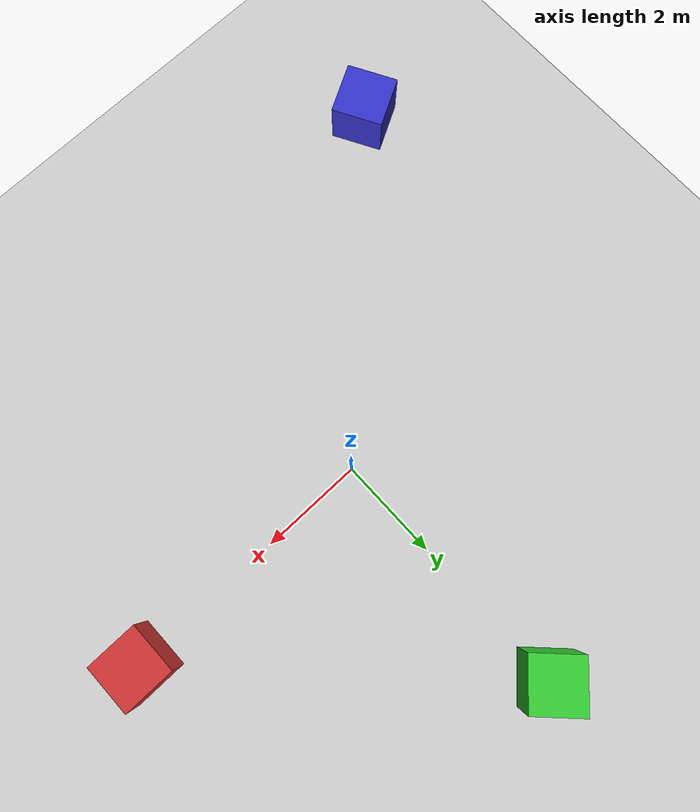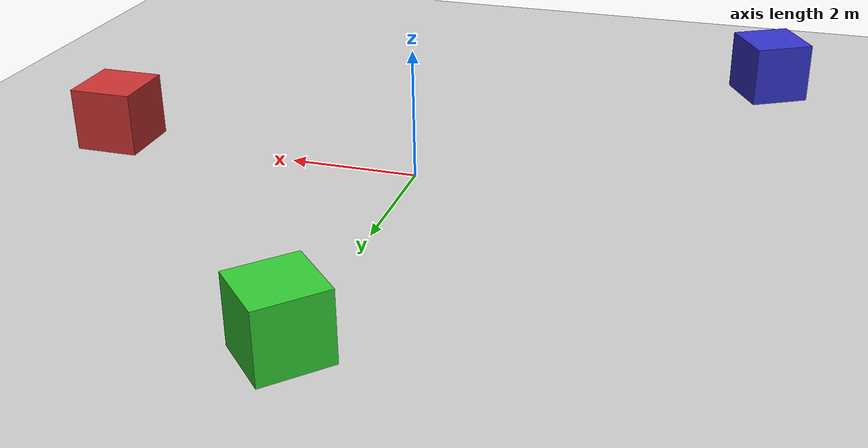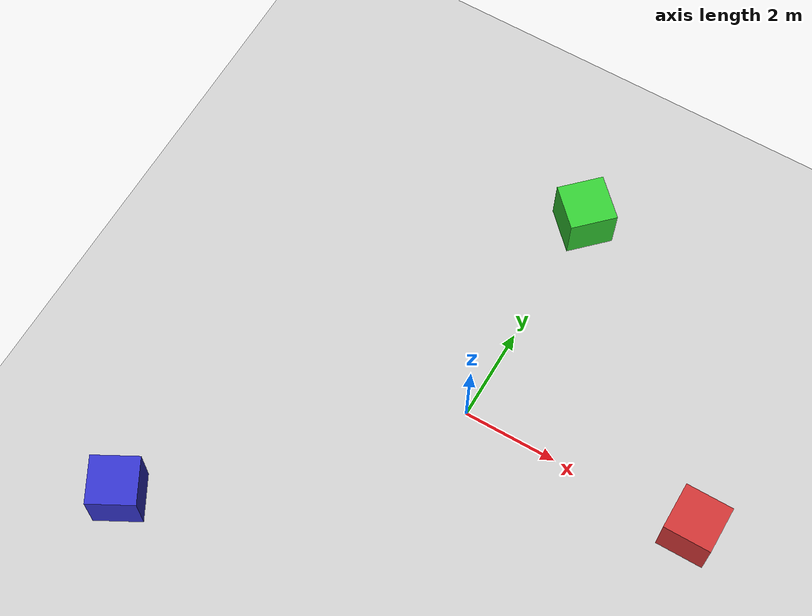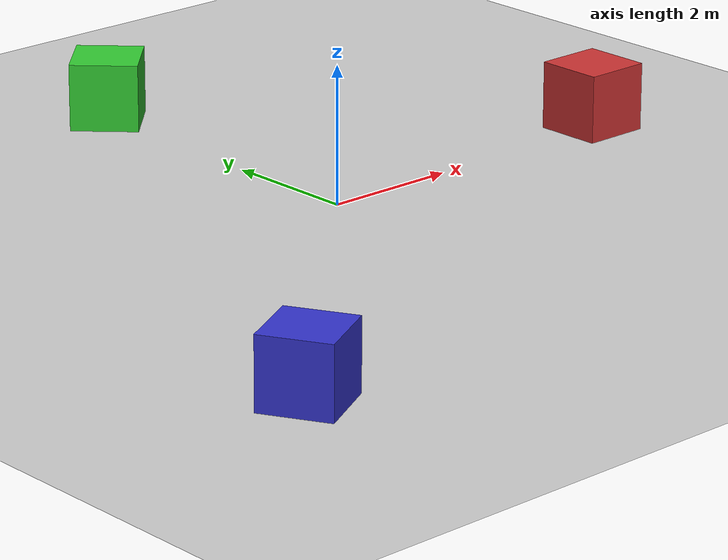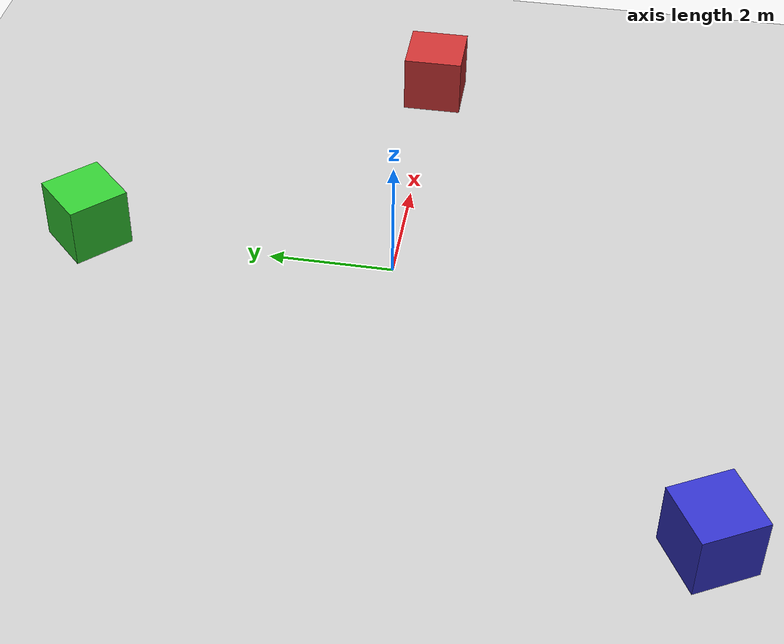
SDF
<?xml version="1.0" ?>
<sdf version="1.8">
  <world name="default">
    <!-- Physics -->
    <physics name="1ms" type="ignored">
      <max_step_size>0.001</max_step_size>
      <real_time_factor>1.0</real_time_factor>
    </physics>

    <!-- Plugins -->
    <plugin filename="gz-sim-physics-system" name="gz::sim::systems::Physics"/>
    <plugin filename="gz-sim-user-commands-system" name="gz::sim::systems::UserCommands"/>
    <plugin filename="gz-sim-scene-broadcaster-system" name="gz::sim::systems::SceneBroadcaster"/>
    <plugin filename="gz-sim-sensors-system" name="gz::sim::systems::Sensors">
      <render_engine>ogre2</render_engine>
    </plugin>
    <plugin filename="gz-sim-imu-system" name="gz::sim::systems::Imu"/>

    <!-- Lighting -->
    <light type="directional" name="sun">
      <cast_shadows>true</cast_shadows>
      <pose>0 0 10 0 0 0</pose>
      <diffuse>0.8 0.8 0.8 1</diffuse>
      <specular>0.2 0.2 0.2 1</specular>
      <attenuation>
        <range>1000</range>
        <constant>0.9</constant>
        <linear>0.01</linear>
        <quadratic>0.001</quadratic>
      </attenuation>
      <direction>-0.5 0.1 -0.9</direction>
    </light>

    <!-- Ground plane -->
    <model name="ground_plane">
      <static>true</static>
      <link name="link">
        <collision name="collision">
          <geometry>
            <plane>
              <normal>0 0 1</normal>
              <size>100 100</size>
            </plane>
          </geometry>
        </collision>
        <visual name="visual">
          <geometry>
            <plane>
              <normal>0 0 1</normal>
              <size>100 100</size>
            </plane>
          </geometry>
          <material>
            <ambient>0.8 0.8 0.8 1</ambient>
            <diffuse>0.8 0.8 0.8 1</diffuse>
            <specular>0.8 0.8 0.8 1</specular>
          </material>
        </visual>
      </link>
    </model>

    <!-- Some visual features for VIO tracking -->
    <model name="box1">
      <static>true</static>
      <pose>5 0 0.5 0 0 0</pose>
      <link name="link">
        <visual name="visual">
          <geometry>
            <box><size>1 1 1</size></box>
          </geometry>
          <material>
            <ambient>0.8 0.2 0.2 1</ambient>
            <diffuse>0.8 0.2 0.2 1</diffuse>
          </material>
        </visual>
        <collision name="collision">
          <geometry>
            <box><size>1 1 1</size></box>
          </geometry>
        </collision>
      </link>
    </model>

    <model name="box2">
      <static>true</static>
      <pose>0 5 0.5 0 0 0.785</pose>
      <link name="link">
        <visual name="visual">
          <geometry>
            <box><size>1 1 1</size></box>
          </geometry>
          <material>
            <ambient>0.2 0.8 0.2 1</ambient>
            <diffuse>0.2 0.8 0.2 1</diffuse>
          </material>
        </visual>
        <collision name="collision">
          <geometry>
            <box><size>1 1 1</size></box>
          </geometry>
        </collision>
      </link>
    </model>

    <model name="box3">
      <static>true</static>
      <pose>-5 -5 0.5 0 0 0.5</pose>
      <link name="link">
        <visual name="visual">
          <geometry>
            <box><size>1 1 1</size></box>
          </geometry>
          <material>
            <ambient>0.2 0.2 0.8 1</ambient>
            <diffuse>0.2 0.2 0.8 1</diffuse>
          </material>
        </visual>
        <collision name="collision">
          <geometry>
            <box><size>1 1 1</size></box>
          </geometry>
        </collision>
      </link>
    </model>

  </world>
</sdf>
